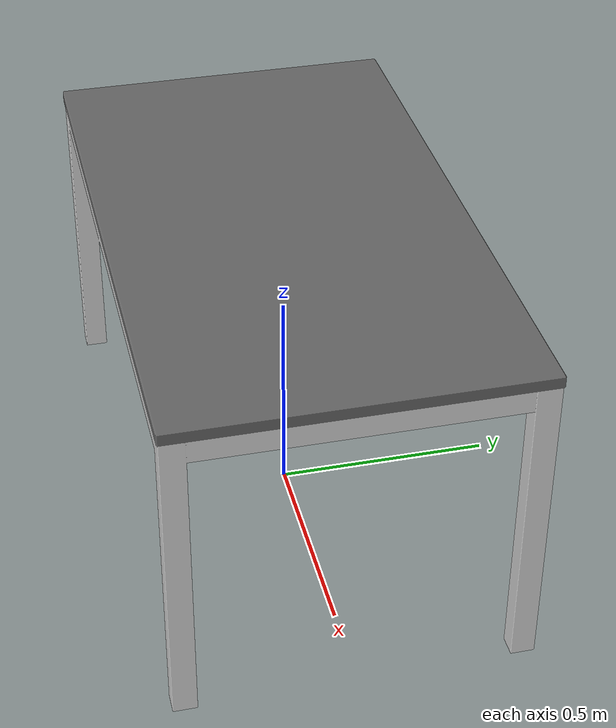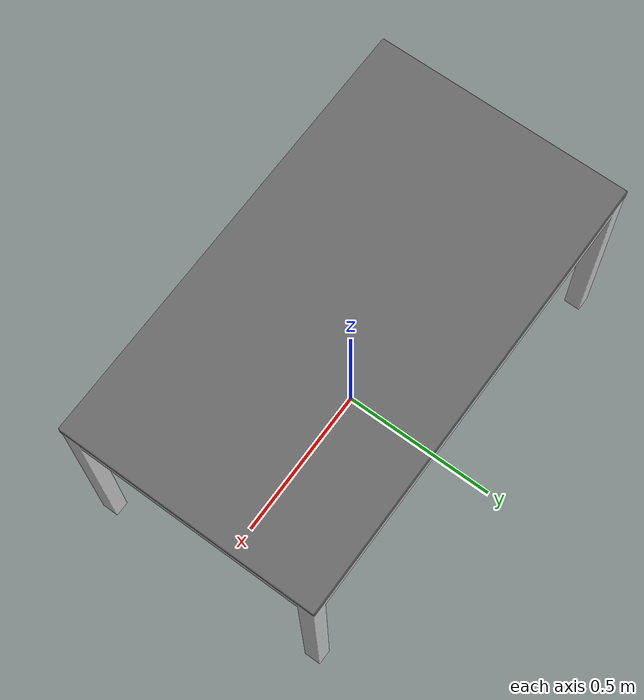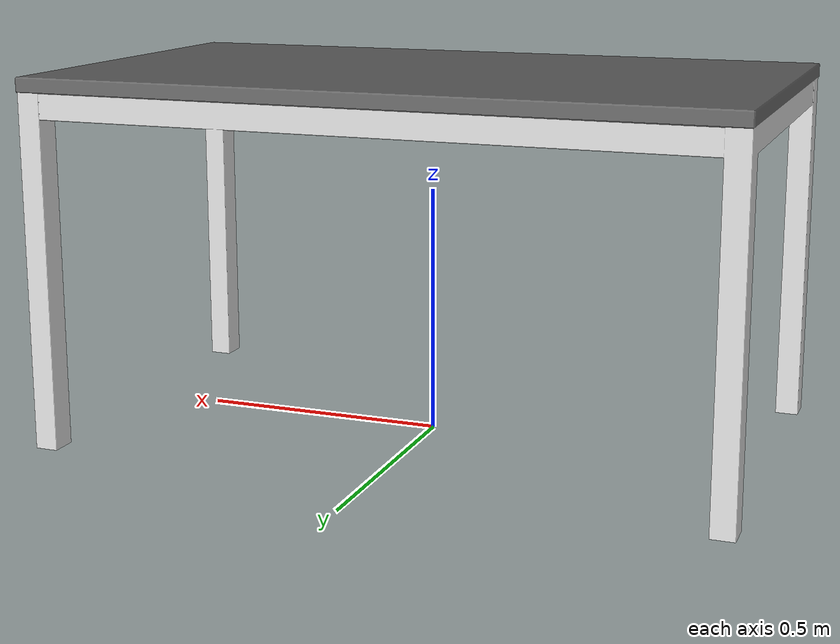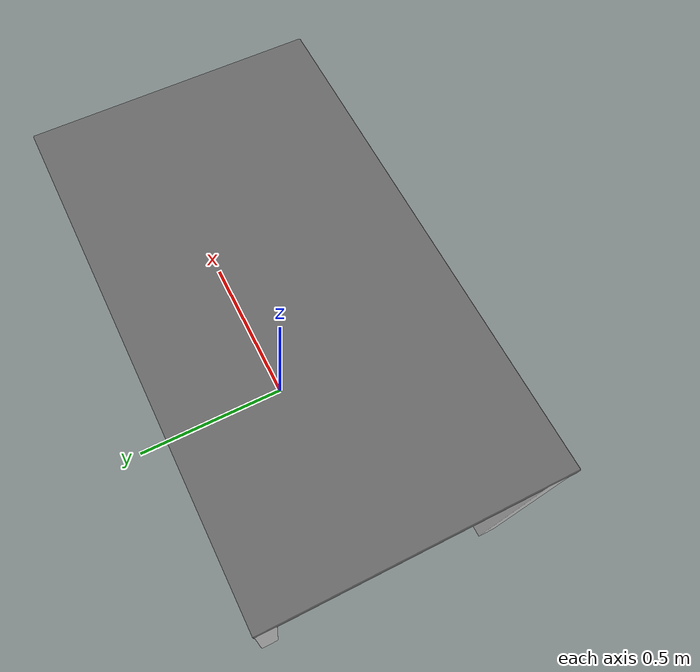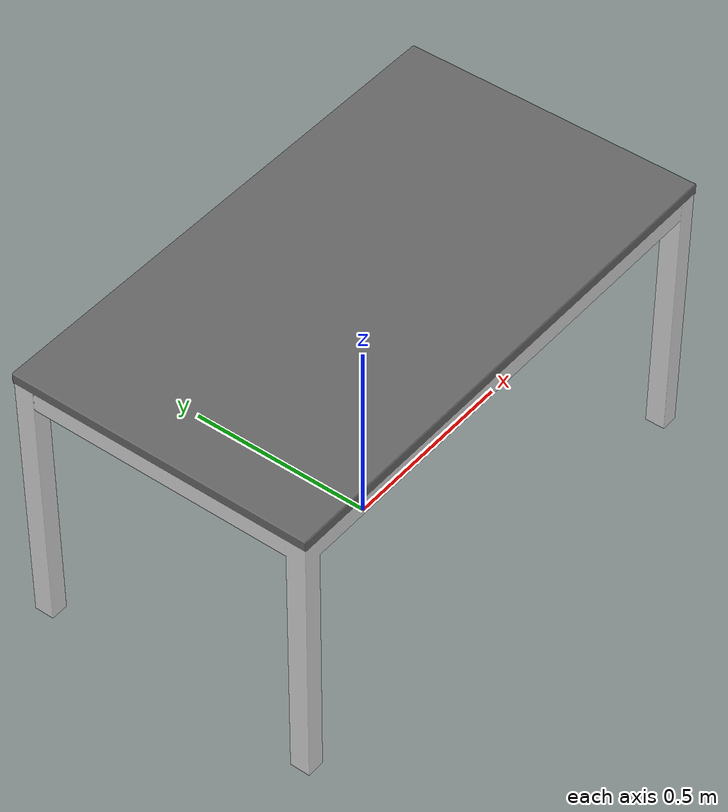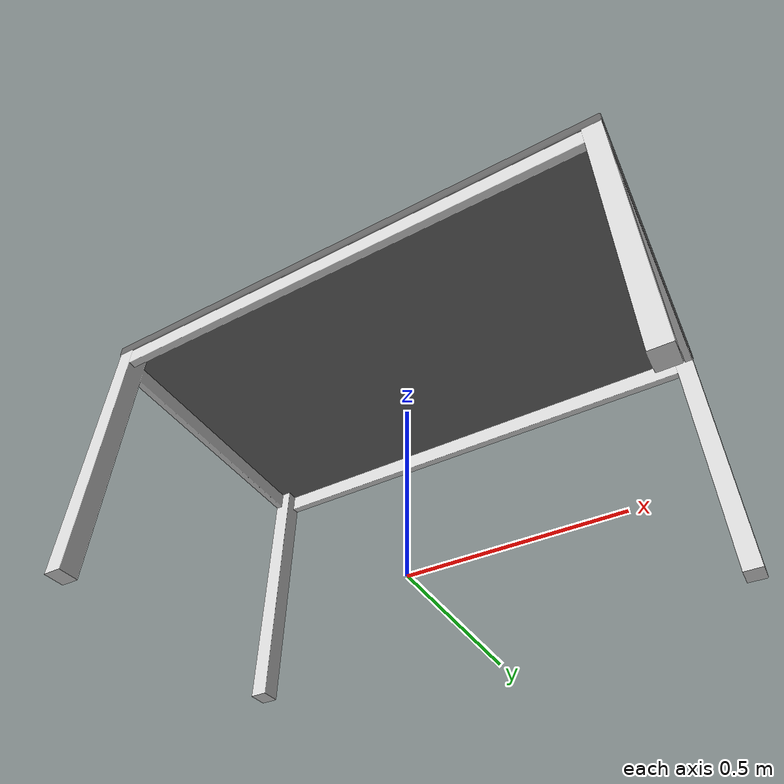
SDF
<?xml version="1.0" ?>
<sdf version="1.0">
  <model name="rectangle_table">
    <static>true</static>
    <link name="rectangle_table">
      <collision name="surface">
        <pose>0 0 0.7000 0 0 0</pose>
        <geometry>
          <box>
            <size>1.4000 0.8000 0.0790</size>
          </box>
        </geometry>
        <surface>
          <friction>
            <ode>
              <mu>0.6</mu>
              <mu2>0.6</mu2>
            </ode>
          </friction>
        </surface>
      </collision>

      <collision name="left_front_leg">
        <pose>-0.6764 0.3733 0.3305 0 0 0</pose>
        <geometry>
          <box>
            <size>0.0467 0.0534 0.6610</size>
          </box>
        </geometry>
      </collision>

      <collision name="right_front_leg">
        <pose>0.6764 0.3733 0.3305 0 0 0</pose>
        <geometry>
          <box>
            <size>0.0467 0.0534 0.6610</size>
          </box>
        </geometry>
      </collision>

      <collision name="left_back_leg">
        <pose>-0.6764 -0.3733 0.3305 0 0 0</pose>
        <geometry>
          <box>
            <size>0.0467 0.0534 0.6610</size>
          </box>
        </geometry>
      </collision>

      <collision name="right_back_leg">
        <pose>0.6764 -0.3733 0.3305 0 0 0</pose>
        <geometry>
          <box>
            <size>0.0467 0.0534 0.6610</size>
          </box>
        </geometry>
      </collision>

      <visual name="rectangle_table_mesh">
	  <cast_shadows>true</cast_shadows>
        <geometry>
          <mesh>
	        <uri>model://rectangle_table/meshes/model.dae</uri>
	      </mesh>
        </geometry>
      </visual>
    </link>
  </model>
</sdf>
